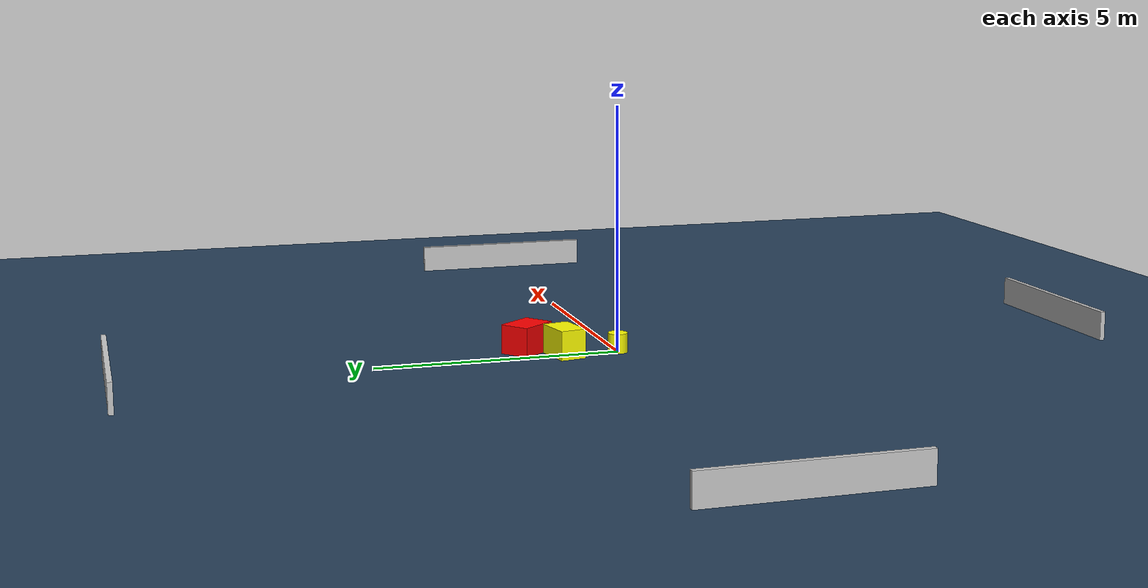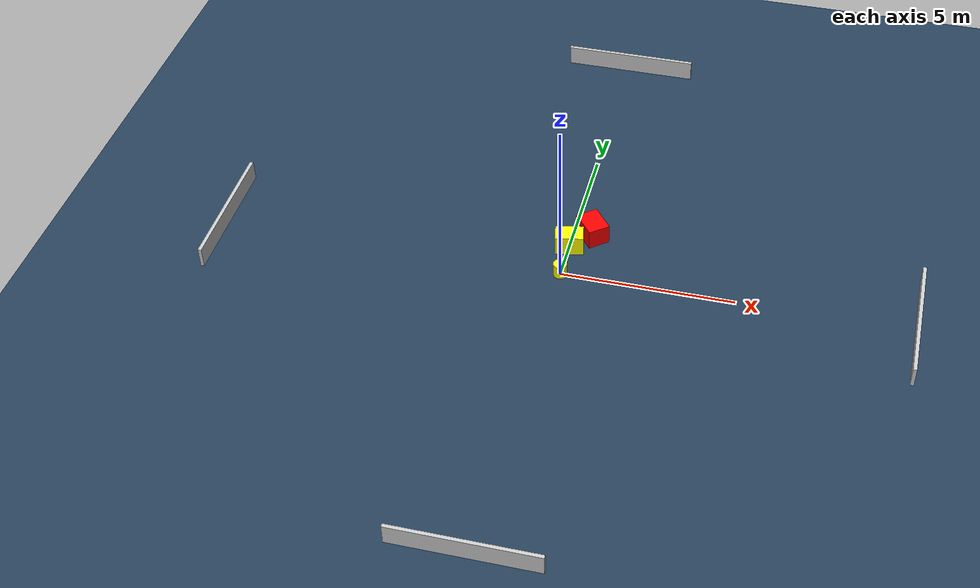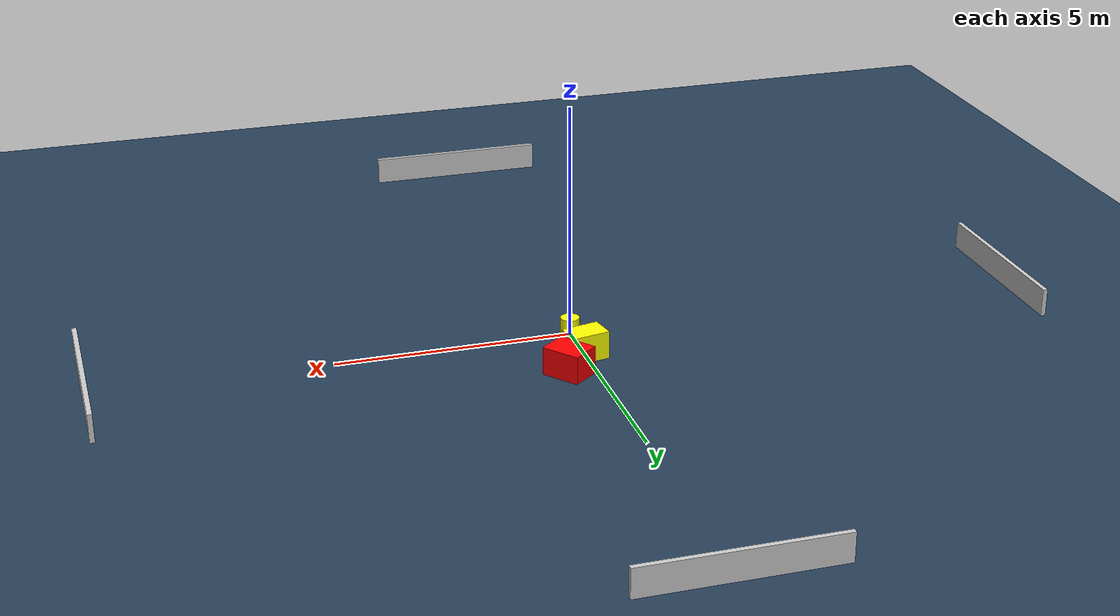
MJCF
<?xml version="1.0" ?>
<mujoco model="generated_environment">
  <option timestep="0.01" integrator="RK4" cone="elliptic"/>
  <default>
    <geom density="1"/>
  </default>
  <asset>
    <texture builtin="gradient" height="3072" name="skybox" rgb1="0.3 0.5 0.7" rgb2="0 0 0" type="skybox" width="512"/>
    <texture builtin="checker" height="300" name="groundplane" rgb1="0.2 0.3 0.4" rgb2="0.1 0.2 0.3" type="2d" width="300"/>
    <material name="groundplane" reflectance="0.2" texrepeat="5 5" texture="groundplane"/>
  </asset>
  <worldbody>
    <light dir="0 0 -1" directional="true" pos="0 0 1.5"/>
    <geom condim="3" friction="0.5 0.005 0.001" material="groundplane" name="floor" pos="0 0 0" size="0 0 0.05" type="plane"/>
    <body name="walls">
      <geom name="wall_1" condim="4" pos="-10.0 0.0 0.3" rgba="0.800000011920929 0.800000011920929 0.800000011920929 1.0" size="0.05 2.0 0.3" type="box"/>
      <geom name="wall_2" condim="4" pos="10.0 0.0 0.3" rgba="0.800000011920929 0.800000011920929 0.800000011920929 1.0" size="0.05 2.0 0.3" type="box"/>
      <geom name="wall_3" condim="4" pos="0.0 -10.0 0.3" rgba="0.800000011920929 0.800000011920929 0.800000011920929 1.0" size="2.0 0.05 0.3" type="box"/>
      <geom name="wall_4" condim="4" pos="0.0 10.0 0.3" rgba="0.800000011920929 0.800000011920929 0.800000011920929 1.0" size="2.0 0.05 0.3" type="box"/>
    </body>
    <body name="robot">
      <joint name="joint_x" type="slide" pos="0 0 0" axis="1 0 0"/>
      <joint name="joint_y" type="slide" pos="0 0 0" axis="0 1 0"/>
      <geom name="robot" type="cylinder" pos="0.0 0.0 0.2" size="0.2 0.2 0.0" mass="5.0" friction="1.0 0.005 0.0001" condim="4" rgba="1.0 1.0 0.0 1.0"/>
    </body>
    <body name="obstacle_1_movable">
      <geom name="obstacle_1_movable" condim="4" pos="0.004460769191002733 1.1243604960079296 0.3" euler="0 0 191.42120294185244" friction="0.0 0.005 0.001" rgba="1.0 1.0 0.0 1.0" size="0.4074183389097672 0.27085838083000857 0.3" type="box" mass="0.1"/>
      <joint type="free"/>
    </body>
    <body name="obstacle_2_static">
      <geom name="obstacle_2_static" condim="4" pos="0.5532354045013228 1.7704835448794802 0.3" euler="0 0 38.55905069768886" friction="0.0 0.005 0.001" rgba="1.0 0.0 0.0 1.0" size="0.32124150867043255 0.419130083767279 0.3" type="box"/>
    </body>
  </worldbody>
  <actuator>
    <motor name="actuator_x" joint="joint_x" gear="1" ctrlrange="-1 1"/>
    <motor name="actuator_y" joint="joint_y" gear="1" ctrlrange="-1 1"/>
  </actuator>
</mujoco>
